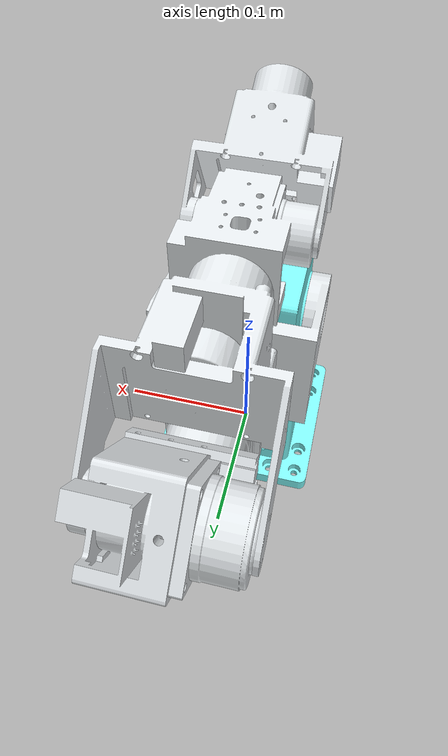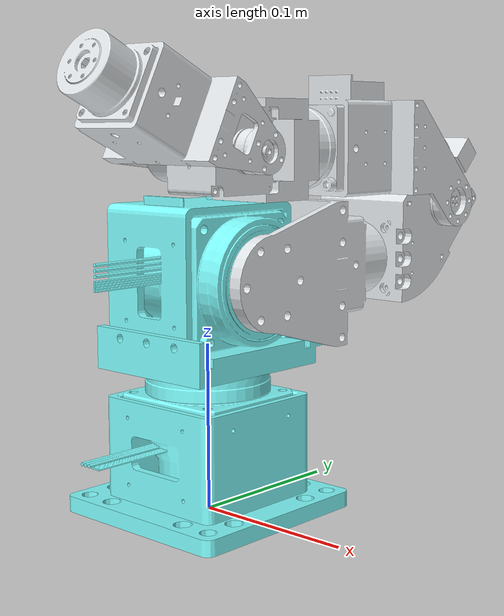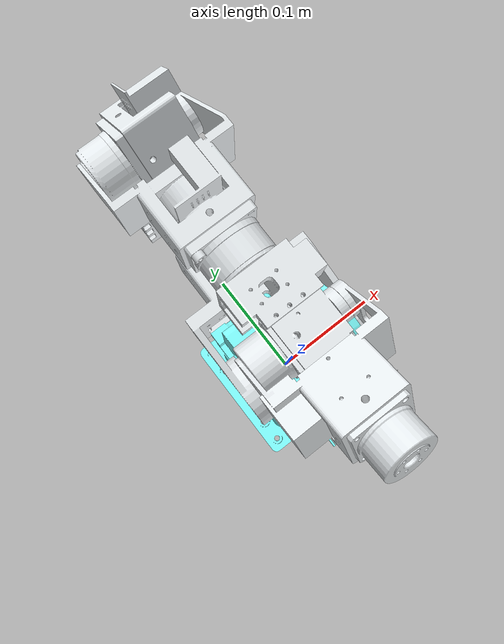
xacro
<?xml version="1.0" encoding="utf-8"?>
<robot
  name="table_arm" xmlns:xacro="http://www.ros.org/wiki/xacro">

  <xacro:include filename="$(find table_arm)/urdf/table_arm.gazebo.xacro" />
  <xacro:include filename="$(find table_arm)/urdf/table_arm.transmission.xacro" />

  <link name="world"/>
  <joint name="joint0 " type="fixed">
    <origin
      xyz="0 0 0"
      rpy="0 0 0" />
    <parent link="world"/>
    <child link="base_link"/>
  </joint>

  <link
    name="base_link">
    <inertial>
      <origin
        xyz="-1.65706190610316E-05 -0.000119916277251549 0.0300539583353379"
        rpy="0 0 0" />
      <mass
        value="1.12509149890152" />
      <inertia
        ixx="0.1"
        ixy="0"
        ixz="0"
        iyy="0.1"
        iyz="0"
        izz="0.1" />
    </inertial>
    <visual>
      <origin
        xyz="0 0 0"
        rpy="0 0 0" />
      <geometry>
        <mesh
          filename="package://table_arm/meshes/base_link.STL" />
      </geometry>
      <material
        name="">
        <color
          rgba="0.501960784313725 1 1 1" />
      </material>
    </visual>
    <collision>
      <origin
        xyz="0 0 0"
        rpy="0 0 0" />
      <geometry>
        <mesh
          filename="package://table_arm/meshes/base_link.STL" />
      </geometry>
    </collision>
  </link>
  <link
    name="link_1">
    <inertial>
      <origin
        xyz="0.000829517194191029 0.00425103504920541 0.0381583105216018"
        rpy="0 0 0" />
      <mass
        value="1.18180242682421" />
      <inertia
        ixx="0.1"
        ixy="0"
        ixz="0"
        iyy="0.1"
        iyz="0"
        izz="0.1" />
    </inertial>
    <visual>
      <origin
        xyz="0 0 0"
        rpy="0 0 0" />
      <geometry>
        <mesh
          filename="package://table_arm/meshes/link_1.STL" />
      </geometry>
      <material
        name="">
        <color
          rgba="0.501960784313725 1 1 1" />
      </material>
    </visual>
    <collision>
      <origin
        xyz="0 0 0"
        rpy="0 0 0" />
      <geometry>
        <mesh
          filename="package://table_arm/meshes/link_1.STL" />
      </geometry>
    </collision>
  </link>
  <joint
    name="joint_1"
    type="revolute">
    <origin
      xyz="0 0 0.092"
      rpy="0 0 1.5707963267949" />
    <parent
      link="base_link" />
    <child
      link="link_1" />
    <axis
      xyz="0 0 1" />
    <limit
      lower="-3.14"
      upper="3.14"
      effort="1000"
      velocity="6.5" />
  </joint>
  <link
    name="link_2">
    <inertial>
      <origin
        xyz="-0.000428554441540732 -0.0773189123724994 -0.00737971204676064"
        rpy="0 0 0" />
      <mass
        value="0.742154760471324" />
      <inertia
        ixx="0.1"
        ixy="0"
        ixz="0"
        iyy="0.1"
        iyz="0"
        izz="0.1" />
    </inertial>
    <visual>
      <origin
        xyz="0 0 0"
        rpy="0 0 0" />
      <geometry>
        <mesh
          filename="package://table_arm/meshes/link_2.STL" />
      </geometry>
      <material
        name="">
        <color
          rgba="0.898039215686275 0.917647058823529 0.929411764705882 1" />
      </material>
    </visual>
    <collision>
      <origin
        xyz="0 0 0"
        rpy="0 0 0" />
      <geometry>
        <mesh
          filename="package://table_arm/meshes/link_2.STL" />
      </geometry>
    </collision>
  </link>
  <joint
    name="joint_2"
    type="revolute">
    <origin
      xyz="0 -0.0075 0.048"
      rpy="1.5707963267949 -1.5707963267949 0" />
    <parent
      link="link_1" />
    <child
      link="link_2" />
    <axis
      xyz="0 0 1" />
    <limit
      lower="-3.14"
      upper="3.14"
      effort="1000"
      velocity="6.5" />
  </joint>
  <link
    name="link_3">
    <inertial>
      <origin
        xyz="-0.000341777112802012 -0.0217027260119467 0.034102311098462"
        rpy="0 0 0" />
      <mass
        value="0.806964917043645" />
      <inertia
        ixx="0.1"
        ixy="0"
        ixz="0"
        iyy="0.1"
        iyz="0"
        izz="0.1" />
    </inertial>
    <visual>
      <origin
        xyz="0 0 0"
        rpy="0 0 0" />
      <geometry>
        <mesh
          filename="package://table_arm/meshes/link_3.STL" />
      </geometry>
      <material
        name="">
        <color
          rgba="0.898039215686275 0.917647058823529 0.929411764705882 1" />
      </material>
    </visual>
    <collision>
      <origin
        xyz="0 0 0"
        rpy="0 0 0" />
      <geometry>
        <mesh
          filename="package://table_arm/meshes/link_3.STL" />
      </geometry>
    </collision>
  </link>
  <joint
    name="joint_3"
    type="revolute">
    <origin
      xyz="0 -0.1445 -0.00749999999998746"
      rpy="1.5707963267949 -1.5707963267949 0" />
    <parent
      link="link_2" />
    <child
      link="link_3" />
    <axis
      xyz="0 0 -1" />
    <limit
      lower="-3.14"
      upper="3.14"
      effort="1000"
      velocity="6.5" />
  </joint>
  <link
    name="link_4">
    <inertial>
      <origin
        xyz="-0.080025706499617 0.029421545370844 0.00322821126434478"
        rpy="0 0 0" />
      <mass
        value="0.566102198606674" />
      <inertia
        ixx="0.1"
        ixy="0"
        ixz="0"
        iyy="0.1"
        iyz="0"
        izz="0.1" />
    </inertial>
    <visual>
      <origin
        xyz="0 0 0"
        rpy="0 0 0" />
      <geometry>
        <mesh
          filename="package://table_arm/meshes/link_4.STL" />
      </geometry>
      <material
        name="">
        <color
          rgba="0.898039215686275 0.917647058823529 0.929411764705882 1" />
      </material>
    </visual>
    <collision>
      <origin
        xyz="0 0 0"
        rpy="0 0 0" />
      <geometry>
        <mesh
          filename="package://table_arm/meshes/link_4.STL" />
      </geometry>
    </collision>
  </link>
  <joint
    name="joint_4"
    type="revolute">
    <origin
      xyz="0.00399999999998503 -0.0365000000000053 0.0455000000000024"
      rpy="-1.5707963267949 -0.785398163397448 1.5707963267949" />
    <parent
      link="link_3" />
    <child
      link="link_4" />
    <axis
      xyz="0 0 -1" />
    <limit
      lower="-3.14"
      upper="3.14"
      effort="1000"
      velocity="6.5" />
  </joint>
  <link
    name="link_5">
    <inertial>
      <origin
        xyz="2.15689631738458E-07 -0.00255241947351406 0.0369004601709006"
        rpy="0 0 0" />
      <mass
        value="0.468596922084729" />
      <inertia
        ixx="0.1"
        ixy="0"
        ixz="0"
        iyy="0.1"
        iyz="0"
        izz="0.1" />
    </inertial>
    <visual>
      <origin
        xyz="0 0 0"
        rpy="0 0 0" />
      <geometry>
        <mesh
          filename="package://table_arm/meshes/link_5.STL" />
      </geometry>
      <material
        name="">
        <color
          rgba="0.898039215686275 0.917647058823529 0.929411764705882 1" />
      </material>
    </visual>
    <collision>
      <origin
        xyz="0 0 0"
        rpy="0 0 0" />
      <geometry>
        <mesh
          filename="package://table_arm/meshes/link_5.STL" />
      </geometry>
    </collision>
  </link>
  <joint
    name="joint_5"
    type="revolute">
    <origin
      xyz="-0.118793939239341 0.0671751442127215 0.00399999999999767"
      rpy="1.5707963267949 0 -2.35619449019234" />
    <parent
      link="link_4" />
    <child
      link="link_5" />
    <axis
      xyz="0 0 -1" />
    <limit
      lower="-3.14"
      upper="3.14"
      effort="1000"
      velocity="6.5" />
  </joint>
  <link
    name="link_6">
    <inertial>
      <origin
        xyz="-0.0258679461161483 0.0521695150773343 0.00614921124537563"
        rpy="0 0 0" />
      <mass
        value="0.410187464873175" />
      <inertia
        ixx="0.1"
        ixy="0"
        ixz="0"
        iyy="0.1"
        iyz="0"
        izz="0.1" />
    </inertial>
    <visual>
      <origin
        xyz="0 0 0"
        rpy="0 0 0" />
      <geometry>
        <mesh
          filename="package://table_arm/meshes/link_6.STL" />
      </geometry>
      <material
        name="">
        <color
          rgba="0.898039215686275 0.917647058823529 0.929411764705882 1" />
      </material>
    </visual>
    <collision>
      <origin
        xyz="0 0 0"
        rpy="0 0 0" />
      <geometry>
        <mesh
          filename="package://table_arm/meshes/link_6.STL" />
      </geometry>
    </collision>
  </link>
  <joint
    name="joint_6"
    type="revolute">
    <origin
      xyz="0 -0.00150000000000088 0.0515"
      rpy="1.5707963267949 0 3.14159265358979" />
    <parent
      link="link_5" />
    <child
      link="link_6" />
    <axis
      xyz="0 0 -1" />
    <limit
      lower="-3.14"
      upper="3.14"
      effort="1000"
      velocity="6.5" />
  </joint>
</robot>

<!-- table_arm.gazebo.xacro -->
<robot xmlns:xacro="http://www.ros.org/wiki/xacro">
  <xacro:include filename="$(find table_arm)/urdf/materials.xacro" />
  <physics type='ode'>
    <max_step_size>0.001</max_step_size>
    <real_time_factor>0.1</real_time_factor>
    <real_time_update_rate>1000</real_time_update_rate>
    <gravity>0 0 -9.8</gravity>
  </physics>
  <!-- ros_control plugin -->
  <gazebo>
    <plugin name="gazebo_ros_control" filename="libgazebo_ros_control.so">
      <robotNamespace>/table_arm</robotNamespace>
      <robotSimType>gazebo_ros_control/DefaultRobotHWSim</robotSimType>
      <legacyModeNS>true</legacyModeNS>
    </plugin>
  </gazebo>

  <gazebo reference="base_link">
    <mu1>0.2</mu1>
    <mu2>0.2</mu2>
    <material>Gazebo/Blue</material>
    <selfCollide>false</selfCollide>
  </gazebo>

  <gazebo reference="link_1">
    <mu1>0.2</mu1>
    <mu2>0.2</mu2>
    <material>Gazebo/Gray</material>
    <selfCollide>false</selfCollide>
  </gazebo>

  <gazebo reference="link_2">
    <mu1>0.2</mu1>
    <mu2>0.2</mu2>
    <material>Gazebo/Blue</material>
    <selfCollide>false</selfCollide>
  </gazebo>

  <gazebo reference="link_3">
    <mu1>0.2</mu1>
    <mu2>0.2</mu2>
    <material>Gazebo/Gray</material>
    <selfCollide>false</selfCollide>
  </gazebo>

  <gazebo reference="link_4">
    <mu1>0.2</mu1>
    <mu2>0.2</mu2>
    <material>Gazebo/Blue</material>
    <selfCollide>false</selfCollide>
  </gazebo>

  <gazebo reference="link_5">
    <mu1>0.2</mu1>
    <mu2>0.2</mu2>
    <material>Gazebo/Gray</material>
    <selfCollide>false</selfCollide>
  </gazebo>

  <gazebo reference="link_6">
    <mu1>0.2</mu1>
    <mu2>0.2</mu2>
    <material>Gazebo/Blue</material>
    <selfCollide>false</selfCollide>
  </gazebo>

  <gazebo reference="joint_1">
    <implicitSpringDamper>True</implicitSpringDamper>
  </gazebo>
  <gazebo reference="joint_2">
    <implicitSpringDamper>True</implicitSpringDamper>
  </gazebo>
  <gazebo reference="joint_3">
    <implicitSpringDamper>True</implicitSpringDamper>
  </gazebo>
  <gazebo reference="joint_4">
    <implicitSpringDamper>True</implicitSpringDamper>
  </gazebo>
  <gazebo reference="joint_5">
    <implicitSpringDamper>True</implicitSpringDamper>
  </gazebo>
  <gazebo reference="joint_6">
    <implicitSpringDamper>True</implicitSpringDamper>
  </gazebo>

</robot>
